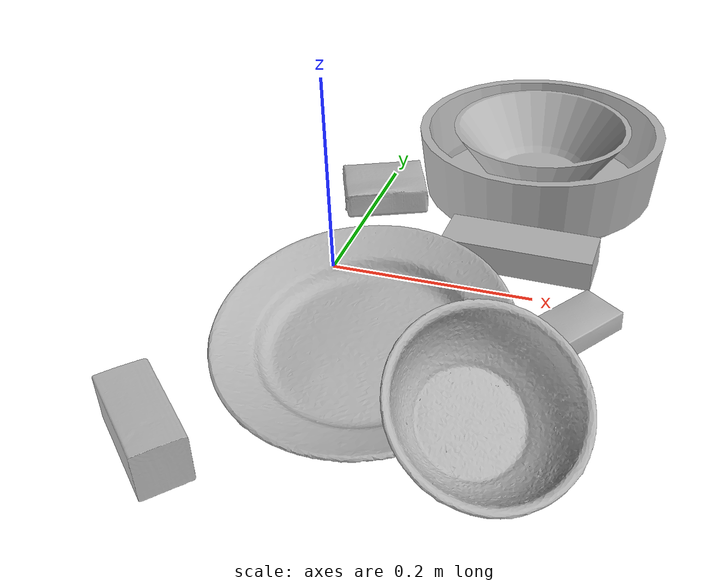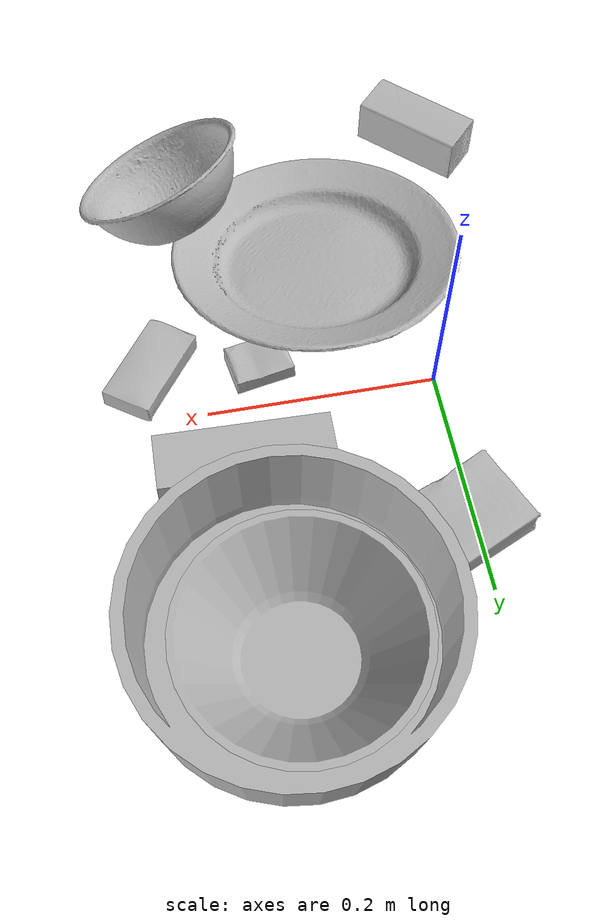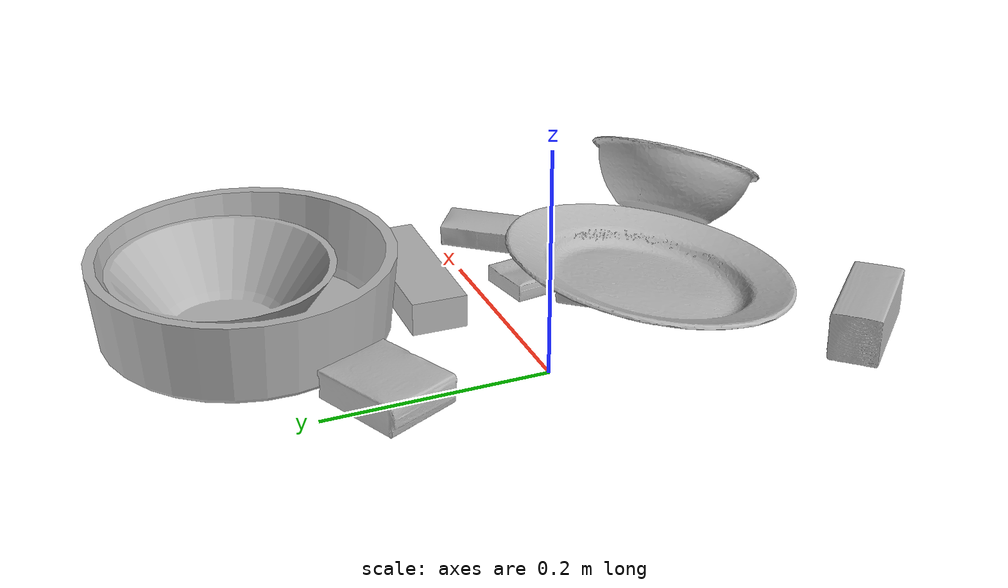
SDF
<sdf version="1.4">
  <world name="default">
    <light name="light1" type="point">
      <pose>0 0 1 0 0 0</pose>
      <diffuse>3 3 3 1</diffuse>
      <specular>3 3 3 1</specular>
    </light>
    <light name="light2" type="point">
      <pose>0 0.5 2 0 0 0</pose>
      <diffuse>1 1 1 1</diffuse>
      <specular>1 1 1 1</specular>
    </light>
    <light name="light3" type="point">
      <pose>0 0.5 2 0 0 0</pose>
      <diffuse>3 3 3 1</diffuse>
      <specular>3 3 3 1</specular>
    </light>
    <scene>
      <ambient>0.7 0.7 0.7</ambient>
    </scene>
    <model name="box1">
      <link name="link_box1">
        <collision name="default">
          <geometry>
            <mesh>
              <uri>model://jenga/collision_meshes/collision.obj</uri>
              <scale>1.0 1.0 1.0</scale>
            </mesh>
          </geometry>
          <surface>
            <friction>
              <ode>
                <mu>0.5</mu>
                <mu2>0.5</mu2>
              </ode>
            </friction>
          <contact>
        <ode>
            <max_vel>0</max_vel>
            <min_depth>0.0001</min_depth>
            <kp>1e8</kp>
        </ode>
    </contact></surface>
        </collision>
        <visual name="default">
          <geometry>
            <mesh>
              <uri>model://jenga/visual_meshes/visual.dae</uri>
              <scale>1.0 1.0 1.0</scale>
            </mesh>
          </geometry>
        </visual>
        <inertial>
          <mass>0.22956150770187378</mass>
          <pose>-2.502855807051674e-07 -0.00010250010382151231 -4.0923401684267446e-05 0.0 -7.34215461761844e-07 0.0</pose>
          <inertia>
            <ixx>6.3525236e-05</ixx>
            <iyy>0.00043044525</iyy>
            <izz>0.0004595369</izz>
            <ixy>0</ixy>
            <ixz>0</ixz>
            <iyz>0</iyz>
          </inertia>
        </inertial>
      </link>
      <pose>0.1757838875055313 0.05582238733768463 0.014999998733401299 5.453522783926927e-09 1.882706118248894e-09 3.114369394475627</pose>
    </model>
    <model name="box11">
      <link name="link_box11">
        <collision name="default">
          <geometry>
            <mesh>
              <uri>model://gelatin_box/collision_meshes/collision.obj</uri>
              <scale>1.0 1.0 1.0</scale>
            </mesh>
          </geometry>
          <surface>
            <friction>
              <ode>
                <mu>0.5</mu>
                <mu2>0.5</mu2>
              </ode>
            </friction>
          <contact>
        <ode>
            <max_vel>0</max_vel>
            <min_depth>0.0001</min_depth>
            <kp>1e8</kp>
        </ode>
    </contact></surface>
        </collision>
        <visual name="default">
          <geometry>
            <mesh>
              <uri>model://gelatin_box/visual_meshes/visual.dae</uri>
              <scale>1.0 1.0 1.0</scale>
            </mesh>
          </geometry>
        </visual>
        <inertial>
          <mass>0.23979201912879944</mass>
          <pose>0.00043196187471039593 0.00011156872642459348 -0.0003640321083366871 -0.0010503717361155602 -0.00475581776093882 0.016440559470502904</pose>
          <inertia>
            <ixx>0.00016927361</ixx>
            <iyy>0.000120911245</iyy>
            <izz>0.00025767216</izz>
            <ixy>0</ixy>
            <ixz>0</ixz>
            <iyz>0</iyz>
          </inertia>
        </inertial>
      </link>
      <pose>0.006886415183544159 0.13936851918697357 0.015168311074376106 0.005596624631635414 -0.007303629662888216 -1.168026652872623</pose>
    </model>
    <model name="box2">
      <link name="link_box2">
        <collision name="default">
          <geometry>
            <mesh>
              <uri>model://wood_block/collision_meshes/collision.obj</uri>
              <scale>0.5 0.5 0.5</scale>
            </mesh>
          </geometry>
          <surface>
            <friction>
              <ode>
                <mu>0.5</mu>
                <mu2>0.5</mu2>
              </ode>
            </friction>
          <contact>
        <ode>
            <max_vel>0</max_vel>
            <min_depth>0.0001</min_depth>
            <kp>1e8</kp>
        </ode>
    </contact></surface>
        </collision>
        <visual name="default">
          <geometry>
            <mesh>
              <uri>model://wood_block/visual_meshes/visual.dae</uri>
              <scale>0.5 0.5 0.5</scale>
            </mesh>
          </geometry>
        </visual>
        <inertial>
          <mass>0.1620619148015976</mass>
          <pose>-2.9066577553749084e-06 -0.000285404734313488 0.00013204291462898254 -0.05221116986778199 -0.0051926948812571205 -0.006861377876233232</pose>
          <inertia>
            <ixx>5.421584e-05</ixx>
            <iyy>0.00017126785</iyy>
            <izz>0.00017062723</izz>
            <ixy>0</ixy>
            <ixz>0</ixz>
            <iyz>0</iyz>
          </inertia>
        </inertial>
      </link>
      <pose>-0.047796670347452164 -0.2740611732006073 0.022629261016845703 -0.005208449254303836 0.005718763345924118 2.386645877085838</pose>
    </model>
    <model name="box21">
      <link name="link_box21">
        <collision name="default">
          <geometry>
            <mesh>
              <uri>model://cracker_box/collision_meshes/collision.obj</uri>
              <scale>0.25 0.25 0.25</scale>
            </mesh>
          </geometry>
          <surface>
            <friction>
              <ode>
                <mu>0.5</mu>
                <mu2>0.5</mu2>
              </ode>
            </friction>
          <contact>
        <ode>
            <max_vel>0</max_vel>
            <min_depth>0.0001</min_depth>
            <kp>1e8</kp>
        </ode>
    </contact></surface>
        </collision>
        <visual name="default">
          <geometry>
            <mesh>
              <uri>model://cracker_box/visual_meshes/visual.dae</uri>
              <scale>0.25 0.25 0.25</scale>
            </mesh>
          </geometry>
        </visual>
        <inertial>
          <mass>0.053346797823905945</mass>
          <pose>0.0002366035187151283 6.358561950037256e-05 -0.00042573839891701937 -0.0003162075101960104 -0.011106487737771283 0.002546795233856971</pose>
          <inertia>
            <ixx>8.4806525e-06</ixx>
            <iyy>1.40032225e-05</iyy>
            <izz>1.9983887e-05</izz>
            <ixy>0</ixy>
            <ixz>0</ixz>
            <iyz>0</iyz>
          </inertia>
        </inertial>
      </link>
      <pose>0.14822734892368317 -0.03985610604286194 0.009120452217757702 -0.011787940175780361 -0.007367159104532295 -2.981755657165994</pose>
    </model>
    <model name="box3">
      <link name="link_box3">
        <collision name="default">
          <geometry>
            <mesh>
              <uri>model://pudding_box/collision_meshes/collision.obj</uri>
              <scale>0.5 0.5 0.5</scale>
            </mesh>
          </geometry>
          <surface>
            <friction>
              <ode>
                <mu>0.5</mu>
                <mu2>0.5</mu2>
              </ode>
            </friction>
          <contact>
        <ode>
            <max_vel>0</max_vel>
            <min_depth>0.0001</min_depth>
            <kp>1e8</kp>
        </ode>
    </contact></surface>
        </collision>
        <visual name="default">
          <geometry>
            <mesh>
              <uri>model://pudding_box/visual_meshes/visual.dae</uri>
              <scale>0.5 0.5 0.5</scale>
            </mesh>
          </geometry>
        </visual>
        <inertial>
          <mass>0.03981568291783333</mass>
          <pose>0.00024474109522998333 0.00040339428232982755 -0.00025944141088984907 0.005213101343760943 -0.0066037982384193495 0.020079821436446477</pose>
          <inertia>
            <ixx>1.1252395e-05</ixx>
            <iyy>7.5706907e-06</iyy>
            <izz>1.6617103e-05</izz>
            <ixy>0</ixy>
            <ixz>0</ixz>
            <iyz>0</iyz>
          </inertia>
        </inertial>
      </link>
      <pose>0.10337354987859726 -0.08808531612157822 0.010402119718492031 0.005824045719135213 -0.05765329206415417 2.4243066497063372</pose>
    </model>
    <model name="box31">
      <link name="link_box31">
        <collision name="default">
          <geometry>
            <mesh>
              <uri>model://sugar_box/collision_meshes/collision.obj</uri>
              <scale>0.5 0.5 0.5</scale>
            </mesh>
          </geometry>
          <surface>
            <friction>
              <ode>
                <mu>0.5</mu>
                <mu2>0.5</mu2>
              </ode>
            </friction>
          <contact>
        <ode>
            <max_vel>0</max_vel>
            <min_depth>0.0001</min_depth>
            <kp>1e8</kp>
        </ode>
    </contact></surface>
        </collision>
        <visual name="default">
          <geometry>
            <mesh>
              <uri>model://sugar_box/visual_meshes/visual.dae</uri>
              <scale>0.5 0.5 0.5</scale>
            </mesh>
          </geometry>
        </visual>
        <inertial>
          <mass>0.09878891706466675</mass>
          <pose>0.0005171863595023751 1.924554817378521e-05 -0.00018182402709499002 -0.0004046259508743568 0.001050663638168667 0.0026153790219137513</pose>
          <inertia>
            <ixx>2.0577656e-05</ixx>
            <iyy>6.651122e-05</iyy>
            <izz>7.9621874e-05</izz>
            <ixy>0</ixy>
            <ixz>0</ixz>
            <iyz>0</iyz>
          </inertia>
        </inertial>
      </link>
      <pose>0.2428656816482544 -0.04837382212281227 0.011399298906326294 0.0007753309612121281 -0.023433246712704112 0.9428491070469062</pose>
    </model>
    <model name="plate1">
      <link name="link_plate1">
        <collision name="default">
          <geometry>
            <mesh>
              <uri>model://pan_tefal/collision_meshes/collision.obj</uri>
              <scale>1.0 1.0 1.0</scale>
            </mesh>
          </geometry>
          <surface>
            <friction>
              <ode>
                <mu>0.5</mu>
                <mu2>0.5</mu2>
              </ode>
            </friction>
          <contact>
        <ode>
            <max_vel>0</max_vel>
            <min_depth>0.0001</min_depth>
            <kp>1e8</kp>
        </ode>
    </contact></surface>
        </collision>
        <visual name="default">
          <geometry>
            <mesh>
              <uri>model://pan_tefal/visual_meshes/visual.dae</uri>
              <scale>1.0 1.0 1.0</scale>
            </mesh>
          </geometry>
        </visual>
        <inertial>
          <mass>1.1273940801620483</mass>
          <pose>-0.00018001534044742584 3.279306838521734e-05 -0.00851493701338768 0.0008190361817388816 -0.00033014848142065665 -0.3318599615030245</pose>
          <inertia>
            <ixx>0.007782347</ixx>
            <iyy>0.00783252</iyy>
            <izz>0.014325799</izz>
            <ixy>0</ixy>
            <ixz>0</ixz>
            <iyz>0</iyz>
          </inertia>
        </inertial>
      </link>
      <pose>0.16473034024238586 0.21240636706352234 0.037968672811985016 -0.0004884396192177153 -0.0004658553086045421 -0.13482883592992612</pose>
    </model>
    <model name="bowl1">
      <link name="link_bowl1">
        <collision name="default">
          <geometry>
            <mesh>
              <uri>model://bowl_a/collision_meshes/collision.obj</uri>
              <scale>1.0 1.0 1.0</scale>
            </mesh>
          </geometry>
          <surface>
            <friction>
              <ode>
                <mu>0.5</mu>
                <mu2>0.5</mu2>
              </ode>
            </friction>
          <contact>
        <ode>
            <max_vel>0</max_vel>
            <min_depth>0.0001</min_depth>
            <kp>1e8</kp>
        </ode>
    </contact></surface>
        </collision>
        <visual name="default">
          <geometry>
            <mesh>
              <uri>model://bowl_a/visual_meshes/visual.dae</uri>
              <scale>1.0 1.0 1.0</scale>
            </mesh>
          </geometry>
        </visual>
        <inertial>
          <mass>0.3873887062072754</mass>
          <pose>0.00027867493918165565 4.731054286821745e-05 -0.0013765293406322598 -0.0009805472575270138 -0.0010938146264646796 -0.19122952428204854</pose>
          <inertia>
            <ixx>0.0011029133</ixx>
            <iyy>0.0011096848</iyy>
            <izz>0.001961574</izz>
            <ixy>0</ixy>
            <ixz>0</ixz>
            <iyz>0</iyz>
          </inertia>
        </inertial>
      </link>
      <pose>0.16228137910366058 0.23121097683906555 0.038127075880765915 0.0013675308774456886 -3.281946707039833e-05 -0.8114712852698843</pose>
    </model>
    <model name="plate2">
      <link name="link_plate2">
        <collision name="default">
          <geometry>
            <mesh>
              <uri>model://plate/collision_meshes/collision.obj</uri>
              <scale>1.0 1.0 1.0</scale>
            </mesh>
          </geometry>
          <surface>
            <friction>
              <ode>
                <mu>0.5</mu>
                <mu2>0.5</mu2>
              </ode>
            </friction>
          <contact>
        <ode>
            <max_vel>0</max_vel>
            <min_depth>0.0001</min_depth>
            <kp>1e8</kp>
        </ode>
    </contact></surface>
        </collision>
        <visual name="default">
          <geometry>
            <mesh>
              <uri>model://plate/visual_meshes/visual.dae</uri>
              <scale>1.0 1.0 1.0</scale>
            </mesh>
          </geometry>
        </visual>
        <inertial>
          <mass>0.13866961002349854</mass>
          <pose>-0.0006044620531611145 0.0002782586379908025 -0.0010561972158029675 0.0022187857877866432 -0.0032254843385796767 0.452609315183835</pose>
          <inertia>
            <ixx>0.0006486992</ixx>
            <iyy>0.0006424946</iyy>
            <izz>0.0012687586</izz>
            <ixy>0</ixy>
            <ixz>0</ixz>
            <iyz>0</iyz>
          </inertia>
        </inertial>
      </link>
      <pose>0.08048990368843079 -0.13128501176834106 0.02833227999508381 -0.07845273328589661 0.17385244971134148 -1.9705555722810826</pose>
    </model>
    <model name="bowl2">
      <link name="link_bowl2">
        <collision name="default">
          <geometry>
            <mesh>
              <uri>model://bowl/collision_meshes/collision.obj</uri>
              <scale>1.0 1.0 1.0</scale>
            </mesh>
          </geometry>
          <surface>
            <friction>
              <ode>
                <mu>0.5</mu>
                <mu2>0.5</mu2>
              </ode>
            </friction>
          <contact>
        <ode>
            <max_vel>0</max_vel>
            <min_depth>0.0001</min_depth>
            <kp>1e8</kp>
        </ode>
    </contact></surface>
        </collision>
        <visual name="default">
          <geometry>
            <mesh>
              <uri>model://bowl/visual_meshes/visual.dae</uri>
              <scale>1.0 1.0 1.0</scale>
            </mesh>
          </geometry>
        </visual>
        <inertial>
          <mass>0.04854629561305046</mass>
          <pose>0.00020445325935725123 -0.0010302069131284952 -0.0008042645058594644 -0.015764106240563104 0.014546770392749554 0.7140394241749954</pose>
          <inertia>
            <ixx>0.00011151466</ixx>
            <iyy>0.00010902299</iyy>
            <izz>0.00018760598</izz>
            <ixy>0</ixy>
            <ixz>0</ixz>
            <iyz>0</iyz>
          </inertia>
        </inertial>
      </link>
      <pose>0.2015332579612732 -0.21431919932365417 0.04765758290886879 0.5778619796646322 0.0772160481695062 0.6108658016689931</pose>
    </model>
  <physics type="ode">
      <max_contacts>50</max_contacts>
      <ode>
        <solver>
          <type>quick</type>
          <iters>75</iters>
        </solver>
        <constraints>
          <contact_max_correcting_vel>0</contact_max_correcting_vel>
          <contact_surface_layer>0</contact_surface_layer>
        </constraints>
      </ode>
    </physics></world>
</sdf>
